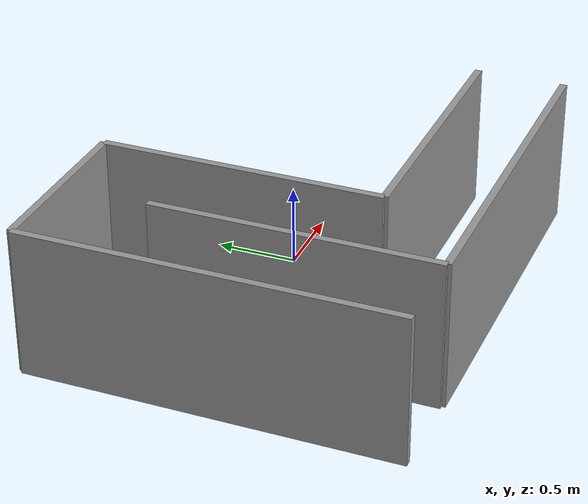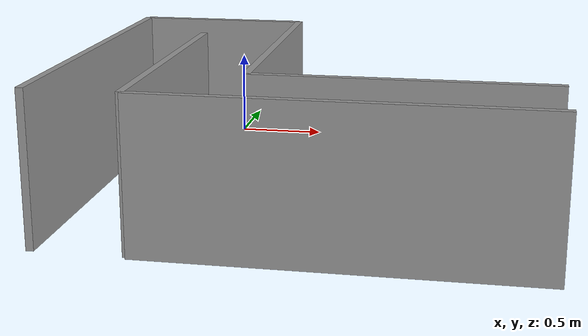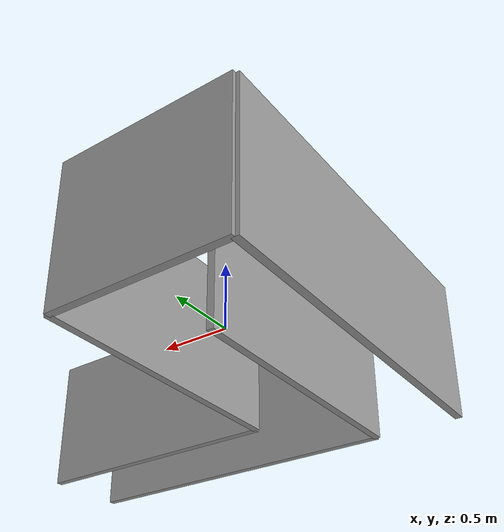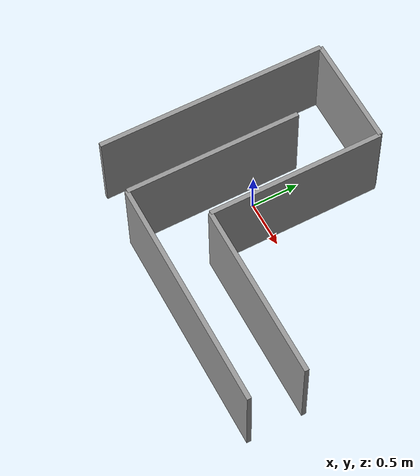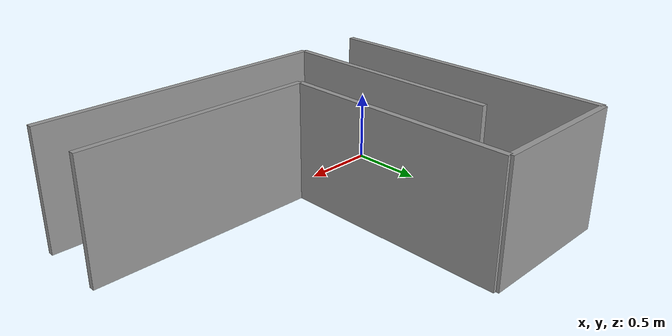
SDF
<?xml version='1.0'?>
<sdf version='1.6'>
  <model name='mini_projwalls'>
    <link name='link_0'>
      <pose frame=''>0.783333 -1.14167 0 0 -0 0</pose>
      <inertial>
        <mass>1</mass>
        <inertia>
          <ixx>0.166667</ixx>
          <ixy>0</ixy>
          <ixz>0</ixz>
          <iyy>0.166667</iyy>
          <iyz>0</iyz>
          <izz>0.166667</izz>
        </inertia>
        <pose frame=''>0 0 0 0 -0 0</pose>
      </inertial>
      <gravity>1</gravity>
      <self_collide>0</self_collide>
      <kinematic>0</kinematic>
      <visual name='visual'>
        <pose frame=''>0 0 0 0 -0 0</pose>
        <geometry>
          <box>
            <size>2.5 0.05 1</size>
          </box>
        </geometry>
        <material>
          <lighting>1</lighting>
          <script>
            <uri>file://media/materials/scripts/gazebo.material</uri>
            <name>Gazebo/Grey</name>
          </script>
          <ambient>0.3 0.3 0.3 1</ambient>
          <diffuse>0.7 0.7 0.7 1</diffuse>
          <specular>0.01 0.01 0.01 1</specular>
          <emissive>0 0 0 1</emissive>
          <shader type='vertex'>
            <normal_map>_default_</normal_map>
          </shader>
        </material>
        <cast_shadows>1</cast_shadows>
        <transparency>0</transparency>
      </visual>
      <collision name='collision'>
        <laser_retro>0</laser_retro>
        <max_contacts>10</max_contacts>
        <pose frame=''>0 0 0 0 -0 0</pose>
        <geometry>
          <box>
            <size>2.5 0.05 1</size>
          </box>
        </geometry>
        <surface>
          <friction>
            <ode>
              <mu>1</mu>
              <mu2>1</mu2>
              <fdir1>0 0 0</fdir1>
              <slip1>0</slip1>
              <slip2>0</slip2>
            </ode>
            <torsional>
              <coefficient>1</coefficient>
              <patch_radius>0</patch_radius>
              <surface_radius>0</surface_radius>
              <use_patch_radius>1</use_patch_radius>
              <ode>
                <slip>0</slip>
              </ode>
            </torsional>
          </friction>
          <bounce>
            <restitution_coefficient>0</restitution_coefficient>
            <threshold>1e+06</threshold>
          </bounce>
          <contact>
            <collide_without_contact>0</collide_without_contact>
            <collide_without_contact_bitmask>1</collide_without_contact_bitmask>
            <collide_bitmask>1</collide_bitmask>
            <ode>
              <soft_cfm>0</soft_cfm>
              <soft_erp>0.2</soft_erp>
              <kp>1e+13</kp>
              <kd>1</kd>
              <max_vel>0.01</max_vel>
              <min_depth>0</min_depth>
            </ode>
            <bullet>
              <split_impulse>1</split_impulse>
              <split_impulse_penetration_threshold>-0.01</split_impulse_penetration_threshold>
              <soft_cfm>0</soft_cfm>
              <soft_erp>0.2</soft_erp>
              <kp>1e+13</kp>
              <kd>1</kd>
            </bullet>
          </contact>
        </surface>
      </collision>
    </link>
    <link name='link_0_clone'>
      <pose frame=''>1.08333 -0.541667 0 0 -0 0</pose>
      <inertial>
        <mass>1</mass>
        <inertia>
          <ixx>0.166667</ixx>
          <ixy>0</ixy>
          <ixz>0</ixz>
          <iyy>0.166667</iyy>
          <iyz>0</iyz>
          <izz>0.166667</izz>
        </inertia>
        <pose frame=''>0 0 0 0 -0 0</pose>
      </inertial>
      <self_collide>0</self_collide>
      <kinematic>0</kinematic>
      <gravity>1</gravity>
      <visual name='visual'>
        <pose frame=''>0 0 0 0 -0 0</pose>
        <geometry>
          <box>
            <size>1.9 0.05 1</size>
          </box>
        </geometry>
        <material>
          <lighting>1</lighting>
          <script>
            <uri>file://media/materials/scripts/gazebo.material</uri>
            <name>Gazebo/Grey</name>
          </script>
          <ambient>0.3 0.3 0.3 1</ambient>
          <diffuse>0.7 0.7 0.7 1</diffuse>
          <specular>0.01 0.01 0.01 1</specular>
          <emissive>0 0 0 1</emissive>
          <shader type='vertex'>
            <normal_map>_default_</normal_map>
          </shader>
        </material>
        <cast_shadows>1</cast_shadows>
        <transparency>0</transparency>
      </visual>
      <collision name='collision'>
        <laser_retro>0</laser_retro>
        <max_contacts>10</max_contacts>
        <pose frame=''>0 0 0 0 -0 0</pose>
        <geometry>
          <box>
            <size>1.9 0.05 1</size>
          </box>
        </geometry>
        <surface>
          <friction>
            <ode>
              <mu>1</mu>
              <mu2>1</mu2>
              <fdir1>0 0 0</fdir1>
              <slip1>0</slip1>
              <slip2>0</slip2>
            </ode>
            <torsional>
              <coefficient>1</coefficient>
              <patch_radius>0</patch_radius>
              <surface_radius>0</surface_radius>
              <use_patch_radius>1</use_patch_radius>
              <ode>
                <slip>0</slip>
              </ode>
            </torsional>
          </friction>
          <bounce>
            <restitution_coefficient>0</restitution_coefficient>
            <threshold>1e+06</threshold>
          </bounce>
          <contact>
            <collide_without_contact>0</collide_without_contact>
            <collide_without_contact_bitmask>1</collide_without_contact_bitmask>
            <collide_bitmask>1</collide_bitmask>
            <ode>
              <soft_cfm>0</soft_cfm>
              <soft_erp>0.2</soft_erp>
              <kp>1e+13</kp>
              <kd>1</kd>
              <max_vel>0.01</max_vel>
              <min_depth>0</min_depth>
            </ode>
            <bullet>
              <split_impulse>1</split_impulse>
              <split_impulse_penetration_threshold>-0.01</split_impulse_penetration_threshold>
              <soft_cfm>0</soft_cfm>
              <soft_erp>0.2</soft_erp>
              <kp>1e+13</kp>
              <kd>1</kd>
            </bullet>
          </contact>
        </surface>
      </collision>
    </link>
    <link name='link_0_clone_0'>
      <pose frame=''>-1.06667 0.108333 0 0 -0 1.5707</pose>
      <inertial>
        <mass>1</mass>
        <inertia>
          <ixx>0.166667</ixx>
          <ixy>0</ixy>
          <ixz>0</ixz>
          <iyy>0.166667</iyy>
          <iyz>0</iyz>
          <izz>0.166667</izz>
        </inertia>
        <pose frame=''>0 0 0 0 -0 0</pose>
      </inertial>
      <self_collide>0</self_collide>
      <kinematic>0</kinematic>
      <gravity>1</gravity>
      <visual name='visual'>
        <pose frame=''>0 0 0 0 -0 0</pose>
        <geometry>
          <box>
            <size>2.5 0.05 1</size>
          </box>
        </geometry>
        <material>
          <lighting>1</lighting>
          <script>
            <uri>file://media/materials/scripts/gazebo.material</uri>
            <name>Gazebo/Grey</name>
          </script>
          <ambient>0.3 0.3 0.3 1</ambient>
          <diffuse>0.7 0.7 0.7 1</diffuse>
          <specular>0.01 0.01 0.01 1</specular>
          <emissive>0 0 0 1</emissive>
          <shader type='vertex'>
            <normal_map>_default_</normal_map>
          </shader>
        </material>
        <cast_shadows>1</cast_shadows>
        <transparency>0</transparency>
      </visual>
      <collision name='collision'>
        <laser_retro>0</laser_retro>
        <max_contacts>10</max_contacts>
        <pose frame=''>0 0 0 0 -0 0</pose>
        <geometry>
          <box>
            <size>2.5 0.05 1</size>
          </box>
        </geometry>
        <surface>
          <friction>
            <ode>
              <mu>1</mu>
              <mu2>1</mu2>
              <fdir1>0 0 0</fdir1>
              <slip1>0</slip1>
              <slip2>0</slip2>
            </ode>
            <torsional>
              <coefficient>1</coefficient>
              <patch_radius>0</patch_radius>
              <surface_radius>0</surface_radius>
              <use_patch_radius>1</use_patch_radius>
              <ode>
                <slip>0</slip>
              </ode>
            </torsional>
          </friction>
          <bounce>
            <restitution_coefficient>0</restitution_coefficient>
            <threshold>1e+06</threshold>
          </bounce>
          <contact>
            <collide_without_contact>0</collide_without_contact>
            <collide_without_contact_bitmask>1</collide_without_contact_bitmask>
            <collide_bitmask>1</collide_bitmask>
            <ode>
              <soft_cfm>0</soft_cfm>
              <soft_erp>0.2</soft_erp>
              <kp>1e+13</kp>
              <kd>1</kd>
              <max_vel>0.01</max_vel>
              <min_depth>0</min_depth>
            </ode>
            <bullet>
              <split_impulse>1</split_impulse>
              <split_impulse_penetration_threshold>-0.01</split_impulse_penetration_threshold>
              <soft_cfm>0</soft_cfm>
              <soft_erp>0.2</soft_erp>
              <kp>1e+13</kp>
              <kd>1</kd>
            </bullet>
          </contact>
        </surface>
      </collision>
    </link>
    <link name='link_0_clone_clone'>
      <pose frame=''>-0.466667 -0.191667 0 0 -0 1.5707</pose>
      <inertial>
        <mass>1</mass>
        <inertia>
          <ixx>0.166667</ixx>
          <ixy>0</ixy>
          <ixz>0</ixz>
          <iyy>0.166667</iyy>
          <iyz>0</iyz>
          <izz>0.166667</izz>
        </inertia>
        <pose frame=''>0 0 0 0 -0 0</pose>
      </inertial>
      <self_collide>0</self_collide>
      <kinematic>0</kinematic>
      <gravity>1</gravity>
      <visual name='visual'>
        <pose frame=''>0 0 0 0 -0 0</pose>
        <geometry>
          <box>
            <size>1.9 0.05 1</size>
          </box>
        </geometry>
        <material>
          <lighting>1</lighting>
          <script>
            <uri>file://media/materials/scripts/gazebo.material</uri>
            <name>Gazebo/Grey</name>
          </script>
          <ambient>0.3 0.3 0.3 1</ambient>
          <diffuse>0.7 0.7 0.7 1</diffuse>
          <specular>0.01 0.01 0.01 1</specular>
          <emissive>0 0 0 1</emissive>
          <shader type='vertex'>
            <normal_map>_default_</normal_map>
          </shader>
        </material>
        <cast_shadows>1</cast_shadows>
        <transparency>0</transparency>
      </visual>
      <collision name='collision'>
        <laser_retro>0</laser_retro>
        <max_contacts>10</max_contacts>
        <pose frame=''>0 0 0 0 -0 0</pose>
        <geometry>
          <box>
            <size>1.9 0.05 1</size>
          </box>
        </geometry>
        <surface>
          <friction>
            <ode>
              <mu>1</mu>
              <mu2>1</mu2>
              <fdir1>0 0 0</fdir1>
              <slip1>0</slip1>
              <slip2>0</slip2>
            </ode>
            <torsional>
              <coefficient>1</coefficient>
              <patch_radius>0</patch_radius>
              <surface_radius>0</surface_radius>
              <use_patch_radius>1</use_patch_radius>
              <ode>
                <slip>0</slip>
              </ode>
            </torsional>
          </friction>
          <bounce>
            <restitution_coefficient>0</restitution_coefficient>
            <threshold>1e+06</threshold>
          </bounce>
          <contact>
            <collide_without_contact>0</collide_without_contact>
            <collide_without_contact_bitmask>1</collide_without_contact_bitmask>
            <collide_bitmask>1</collide_bitmask>
            <ode>
              <soft_cfm>0</soft_cfm>
              <soft_erp>0.2</soft_erp>
              <kp>1e+13</kp>
              <kd>1</kd>
              <max_vel>0.01</max_vel>
              <min_depth>0</min_depth>
            </ode>
            <bullet>
              <split_impulse>1</split_impulse>
              <split_impulse_penetration_threshold>-0.01</split_impulse_penetration_threshold>
              <soft_cfm>0</soft_cfm>
              <soft_erp>0.2</soft_erp>
              <kp>1e+13</kp>
              <kd>1</kd>
            </bullet>
          </contact>
        </surface>
      </collision>
    </link>
    <link name='link_0_clone_clone_clone'>
      <pose frame=''>0.133333 0.408333 0 0 -0 1.5707</pose>
      <inertial>
        <mass>1</mass>
        <inertia>
          <ixx>0.166667</ixx>
          <ixy>0</ixy>
          <ixz>0</ixz>
          <iyy>0.166667</iyy>
          <iyz>0</iyz>
          <izz>0.166667</izz>
        </inertia>
        <pose frame=''>0 0 0 0 -0 0</pose>
      </inertial>
      <self_collide>0</self_collide>
      <kinematic>0</kinematic>
      <gravity>1</gravity>
      <visual name='visual'>
        <pose frame=''>0 0 0 0 -0 0</pose>
        <geometry>
          <box>
            <size>1.9 0.05 1</size>
          </box>
        </geometry>
        <material>
          <lighting>1</lighting>
          <script>
            <uri>file://media/materials/scripts/gazebo.material</uri>
            <name>Gazebo/Grey</name>
          </script>
          <ambient>0.3 0.3 0.3 1</ambient>
          <diffuse>0.7 0.7 0.7 1</diffuse>
          <specular>0.01 0.01 0.01 1</specular>
          <emissive>0 0 0 1</emissive>
          <shader type='vertex'>
            <normal_map>_default_</normal_map>
          </shader>
        </material>
        <cast_shadows>1</cast_shadows>
        <transparency>0</transparency>
      </visual>
      <collision name='collision'>
        <laser_retro>0</laser_retro>
        <max_contacts>10</max_contacts>
        <pose frame=''>0 0 0 0 -0 0</pose>
        <geometry>
          <box>
            <size>1.9 0.05 1</size>
          </box>
        </geometry>
        <surface>
          <friction>
            <ode>
              <mu>1</mu>
              <mu2>1</mu2>
              <fdir1>0 0 0</fdir1>
              <slip1>0</slip1>
              <slip2>0</slip2>
            </ode>
            <torsional>
              <coefficient>1</coefficient>
              <patch_radius>0</patch_radius>
              <surface_radius>0</surface_radius>
              <use_patch_radius>1</use_patch_radius>
              <ode>
                <slip>0</slip>
              </ode>
            </torsional>
          </friction>
          <bounce>
            <restitution_coefficient>0</restitution_coefficient>
            <threshold>1e+06</threshold>
          </bounce>
          <contact>
            <collide_without_contact>0</collide_without_contact>
            <collide_without_contact_bitmask>1</collide_without_contact_bitmask>
            <collide_bitmask>1</collide_bitmask>
            <ode>
              <soft_cfm>0</soft_cfm>
              <soft_erp>0.2</soft_erp>
              <kp>1e+13</kp>
              <kd>1</kd>
              <max_vel>0.01</max_vel>
              <min_depth>0</min_depth>
            </ode>
            <bullet>
              <split_impulse>1</split_impulse>
              <split_impulse_penetration_threshold>-0.01</split_impulse_penetration_threshold>
              <soft_cfm>0</soft_cfm>
              <soft_erp>0.2</soft_erp>
              <kp>1e+13</kp>
              <kd>1</kd>
            </bullet>
          </contact>
        </surface>
      </collision>
    </link>
    <link name='link_1'>
      <pose frame=''>-0.466667 1.35833 0 0 -0 0</pose>
      <inertial>
        <mass>1</mass>
        <inertia>
          <ixx>0.166667</ixx>
          <ixy>0</ixy>
          <ixz>0</ixz>
          <iyy>0.166667</iyy>
          <iyz>0</iyz>
          <izz>0.166667</izz>
        </inertia>
        <pose frame=''>0 0 0 0 -0 0</pose>
      </inertial>
      <gravity>1</gravity>
      <self_collide>0</self_collide>
      <kinematic>0</kinematic>
      <visual name='visual'>
        <pose frame=''>0 0 0 0 -0 0</pose>
        <geometry>
          <box>
            <size>1.2 0.05 1</size>
          </box>
        </geometry>
        <material>
          <lighting>1</lighting>
          <script>
            <uri>file://media/materials/scripts/gazebo.material</uri>
            <name>Gazebo/Grey</name>
          </script>
          <ambient>0.3 0.3 0.3 1</ambient>
          <diffuse>0.7 0.7 0.7 1</diffuse>
          <specular>0.01 0.01 0.01 1</specular>
          <emissive>0 0 0 1</emissive>
          <shader type='vertex'>
            <normal_map>_default_</normal_map>
          </shader>
        </material>
        <cast_shadows>1</cast_shadows>
        <transparency>0</transparency>
      </visual>
      <collision name='collision'>
        <laser_retro>0</laser_retro>
        <max_contacts>10</max_contacts>
        <pose frame=''>0 0 0 0 -0 0</pose>
        <geometry>
          <box>
            <size>1.2 0.05 1</size>
          </box>
        </geometry>
        <surface>
          <friction>
            <ode>
              <mu>1</mu>
              <mu2>1</mu2>
              <fdir1>0 0 0</fdir1>
              <slip1>0</slip1>
              <slip2>0</slip2>
            </ode>
            <torsional>
              <coefficient>1</coefficient>
              <patch_radius>0</patch_radius>
              <surface_radius>0</surface_radius>
              <use_patch_radius>1</use_patch_radius>
              <ode>
                <slip>0</slip>
              </ode>
            </torsional>
          </friction>
          <bounce>
            <restitution_coefficient>0</restitution_coefficient>
            <threshold>1e+06</threshold>
          </bounce>
          <contact>
            <collide_without_contact>0</collide_without_contact>
            <collide_without_contact_bitmask>1</collide_without_contact_bitmask>
            <collide_bitmask>1</collide_bitmask>
            <ode>
              <soft_cfm>0</soft_cfm>
              <soft_erp>0.2</soft_erp>
              <kp>1e+13</kp>
              <kd>1</kd>
              <max_vel>0.01</max_vel>
              <min_depth>0</min_depth>
            </ode>
            <bullet>
              <split_impulse>1</split_impulse>
              <split_impulse_penetration_threshold>-0.01</split_impulse_penetration_threshold>
              <soft_cfm>0</soft_cfm>
              <soft_erp>0.2</soft_erp>
              <kp>1e+13</kp>
              <kd>1</kd>
            </bullet>
          </contact>
        </surface>
      </collision>
    </link>
    <static>0</static>
    <allow_auto_disable>1</allow_auto_disable>
  </model>
</sdf>
